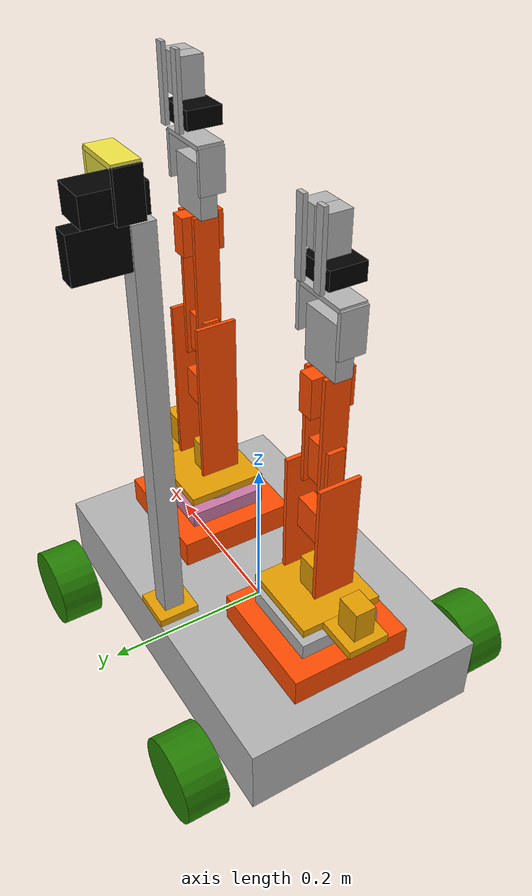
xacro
<?xml version="1.0"?>
<robot name="andrzej" xmlns:xacro="http://www.ros.org/wiki/xacro">

  <!-- Dimensions -->
  <xacro:property name="base_width" value=".3" />
  <xacro:property name="base_length" value=".47" />
  <xacro:property name="base_height" value=".09" />
  <xacro:property name="wheel_diam" value=".1" />
  <xacro:property name="wheel_width" value=".05" />

  <!-- Masses-->
  <xacro:property name="base_mass" value="5" />
  <xacro:property name="wheel_mass" value="0.3" />
  <xacro:property name="arm_base_mass" value="0.2" />
  <xacro:property name="gripper_base_mass" value="0.03" />
  <xacro:property name="gripper_finger_mass" value="0.02" />
  <xacro:property name="head_pole_mass" value="0.3" />

  <xacro:include filename="$(find andrzej_description)/urdf/materials.xacro" />

  <xacro:macro name="default_inertial" params="mass">
    <inertial>
      <mass value="${mass}" />
      <inertia ixx="1.0" ixy="0.0" ixz="0.0" iyy="1.0" iyz="0.0" izz="1.0" />
    </inertial>
  </xacro:macro>

  <xacro:include filename="$(find andrzej_description)/urdf/andrzej.gazebo" />
  <xacro:include filename="$(find andrzej_description)/urdf/andrzej_base.xacro" />
  <xacro:include filename="$(find andrzej_description)/urdf/andrzej_arms.xacro" />
  <xacro:include filename="$(find andrzej_description)/urdf/andrzej_head.xacro" />

</robot>

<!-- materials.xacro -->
<robot>

  <material name="gray">
    <color rgba=".7 .7 .7 .9"/>
  </material>
  <material name="green">
    <color rgba="0.15 0.505 .015 1"/>
  </material>
  <material name="black">
    <color rgba="0 0 0 1"/>
  </material>
  <material name="white">
    <color rgba="1 1 1 1"/>
  </material>
  <material name="orange">
    <color rgba="1 .3 0 .9"/>
  </material>

</robot>

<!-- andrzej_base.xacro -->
<robot name="andrzej" xmlns:xacro="http://www.ros.org/wiki/xacro">

  <link name="base_footprint">
   <visual>
      <origin xyz="0 0 0" rpy="0 0 0" />
      <geometry>
        <box size="0.001 0.001 0.001" />
      </geometry>
    </visual>
  </link>

  <joint name="base_link_joint" type="fixed">
    <origin xyz="0.0 0 0" rpy="0 0 0" />
    <parent link="base_footprint"/>
    <child link="base_link" />
  </joint>

  <link name="base_link">
    <visual>
      <geometry>
        <box size="${base_length} ${base_width} ${base_height}"/>
      </geometry>
      <material name="gray"/>
    </visual>
    <collision>
      <geometry>
        <box size="${base_length} ${base_width} ${base_height}"/>
      </geometry>
    </collision>
    <xacro:default_inertial mass="${base_mass}"/>
  </link>

  <xacro:macro name="wheel" params="prefix reflect_x reflect_y">

    <link name="${prefix}_wheel">
      <visual>
        <origin xyz="0 0 0" rpy="${pi/2} 0 0" />
        <geometry>
          <cylinder radius="${wheel_diam/2}" length="${wheel_width}"/>
        </geometry>
        <material name="green"/>
      </visual>
      <collision>
        <origin xyz="0 0 0" rpy="${pi/2} 0 0" />
        <geometry>
          <cylinder radius="${wheel_diam/2}" length="0.1"/>
        </geometry>
      </collision>
      <xacro:default_inertial mass="${wheel_mass}"/>
    </link>

    <joint name="${prefix}_wheel_joint" type="continuous">
      <axis xyz="0 1 0" rpy="0 0 0" />
      <parent link="base_link"/>
      <child link="${prefix}_wheel"/>
      <origin xyz="${0.17*reflect_x}
                   ${(base_width/2 + wheel_width/2 + .02)*reflect_y}
                   ${-base_height/2 + 0.02}" rpy="0 0 0"/>
    </joint>

  </xacro:macro>

  <xacro:wheel prefix="front_left" reflect_x="1" reflect_y="1" />
  <xacro:wheel prefix="front_right" reflect_x="1" reflect_y="-1" />
  <xacro:wheel prefix="rear_left" reflect_x="-1" reflect_y="1" />
  <xacro:wheel prefix="rear_right" reflect_x="-1" reflect_y="-1" />

</robot>

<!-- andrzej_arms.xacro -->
<robot name="andrzej" xmlns:xacro="http://www.ros.org/wiki/xacro">

  <xacro:include filename="$(find andrzej_description)/urdf/andrzej_arms_spec.xacro" />
  <xacro:include filename="$(find andrzej_description)/urdf/andrzej_gripper.xacro" />

  <xacro:macro name="arm_base" params="arm reflect">
    <link name="arm_${arm}_link_0">
      <visual>
        <geometry>
          <box size=".15 .15 .035"/>
        </geometry>
        <origin xyz="0 0 ${(.035)/2}"/>
        <material name="orange"/>
      </visual>

      <visual>
        <geometry>
          <box size=".1 .1 .02"/>
        </geometry>
        <origin xyz="0 0 0.045"/>
      </visual>

      <collision>
        <geometry>
          <box size=".15 .15 .035"/>
        </geometry>
      </collision>
      <xacro:default_inertial mass="${arm_base_mass}"/>
    </link>

    <joint name="platform_to_arm_${arm}" type="fixed">
      <parent link="base_link"/>
      <child link="arm_${arm}_link_0"/>
      <origin xyz="${0.125*reflect} 0 ${base_height/2}"/>
    </joint>
  </xacro:macro>

  <xacro:macro name="servo" params="arm link_name">
    <transmission name="arm_${arm}_tran_${link_name}">
      <type>transmission_interface/SimpleTransmission</type>
      <joint name="arm_${arm}_joint_${link_name}">
        <hardwareInterface>PositionJointInterface</hardwareInterface>
      </joint>
      <actuator name="arm_${arm}_servo_${link_name}">
        <hardwareInterface>PositionJointInterface</hardwareInterface>
        <mechanicalReduction>1</mechanicalReduction>
      </actuator>
    </transmission>
  </xacro:macro>

  <xacro:macro name="arm_link" params="arm link_name">
    <link name="arm_${arm}_link_${link_name}">
      <xacro:call macro="arm_${arm}_link_${link_name}_visual"/>
      <xacro:call macro="arm_${arm}_link_${link_name}_inertia"/>
    </link>

    <joint name="arm_${arm}_joint_${link_name}" type="revolute">
      <xacro:call macro="arm_${arm}_joint_${link_name}_spec"/>
      <parent link="arm_${arm}_link_${link_name-1}"/>
      <child link="arm_${arm}_link_${link_name}"/>
    </joint>

    <xacro:call macro="servo" arm="${arm}" link_name="${link_name}" />
  </xacro:macro>

  <xacro:macro name="arm" params="arm_id">
    <xacro:arm_link arm="${arm_id}" link_name="1"/>
    <xacro:arm_link arm="${arm_id}" link_name="2"/>
    <xacro:arm_link arm="${arm_id}" link_name="3"/>
    <xacro:arm_link arm="${arm_id}" link_name="4"/>
    <xacro:arm_link arm="${arm_id}" link_name="5"/>
    <xacro:gripper arm="${arm_id}"/>
  </xacro:macro>

  <xacro:call macro="arm_base" arm="1" reflect="1" />
  <xacro:call macro="arm_base" arm="2" reflect="-1" />
  <xacro:call macro="arm" arm_id="1"/>
  <xacro:call macro="arm" arm_id="2"/>

</robot>

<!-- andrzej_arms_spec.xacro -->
<robot name="andrzej" xmlns:xacro="http://www.ros.org/wiki/xacro">

  <xacro:property name="arm_base_length" value=".15" />
  <xacro:property name="arm_base_width" value=".15" />
  <xacro:property name="arm_base_height" value=".055" />

  <xacro:macro name="arm_1_link_1_visual">
    <visual>
      <geometry>
          <cylinder radius="0.0375" length="0.02"/>
      </geometry>
      <origin xyz="0 0 -0.01"/>
      <material name="gray"/>
    </visual>
    <visual>
      <geometry>
          <box size=".1 .1 .01"/>
      </geometry>
      <origin xyz="0 0 0.005"/>
    </visual>
    <visual>
      <geometry>
          <box size=".05 .05 .01"/>
      </geometry>
      <origin xyz="0.075 0 0.005"/>
    </visual>
    <visual>
      <geometry>
          <box size=".03 .025 .04"/>
      </geometry>
      <origin xyz="0.075 0 0.03"/>
    </visual>
    <visual>
      <geometry>
          <box size=".03 .025 .04"/>
      </geometry>
      <origin xyz="0 0 0.03"/>
    </visual>
  </xacro:macro>

  <xacro:macro name="arm_1_joint_1_spec">
    <axis xyz="0 0 1"/>
    <limit effort="1000.0" lower="-.67" upper="2.67" velocity="0.5"/>
    <origin xyz="0 0 .07"/>
  </xacro:macro>

  <xacro:macro name="arm_1_link_2_visual">
    <visual>
      <geometry>
        <box size=".005 .05 ${.2+.01}"/>
      </geometry>
      <origin xyz="-0.03 0 .1"/>
      <material name="orange"/>
    </visual>
    <visual>
      <geometry>
        <box size=".005 .05 ${.2+.01}"/>
      </geometry>
      <origin xyz="0.03 0 .1"/>
      <material name="orange"/>
    </visual>
    <visual>
      <geometry>
        <box size=".06 .02 .04"/>
      </geometry>
      <origin xyz="0 0 .1"/>
      <material name="orange"/>
    </visual>
  </xacro:macro>

  <xacro:macro name="arm_1_joint_2_spec">
    <axis xyz="1 0 0"/>
    <limit effort="1000.0" lower="-1.47" upper="1.87" velocity="0.5"/>
    <origin xyz="0 0 0.03"/>
  </xacro:macro>

  <xacro:macro name="arm_1_link_3_visual">
    <visual>
      <geometry>
        <box size=".005 .03 .18"/>
      </geometry>
      <origin xyz="-.015 0 .05"/>
      <material name="orange"/>
    </visual>
    <visual>
      <geometry>
        <box size=".005 .03 .18"/>
      </geometry>
      <origin xyz=".015 0 .05"/>
      <material name="orange"/>
    </visual>
    <visual>
      <geometry>
        <box size=".045 .02 .05"/>
      </geometry>
      <origin xyz="0 0 -0.01"/>
      <material name="orange"/>
    </visual>
    <visual>
      <geometry>
        <box size=".02 .05 .045"/>
      </geometry>
      <origin xyz="0 0 ${.14-.045/2}"/>
      <material name="orange"/>
    </visual>
  </xacro:macro>

  <xacro:macro name="arm_1_joint_3_spec">
    <axis xyz="1 0 0"/>
    <limit effort="1000.0" lower="-.87" upper="2.47" velocity="0.5"/>
    <origin xyz="0 0 .19"/>
  </xacro:macro>

  <xacro:macro name="arm_1_link_4_visual">
    <visual>
      <geometry>
        <box size=".05 .02 .06"/>
      </geometry>
      <origin xyz="0 0 .03"/>
      <material name="gray"/>
    </visual>
  </xacro:macro>

  <xacro:macro name="arm_1_joint_4_spec">
    <axis xyz="0 0 1"/>
    <limit effort="1000.0" lower="-1.67" upper="1.67" velocity="0.5"/>
    <origin xyz="0 0 .14"/>
  </xacro:macro>

  <xacro:macro name="arm_1_link_5_visual">
    <visual>
      <geometry>
        <box size=".005 .03 .05"/>
      </geometry>
      <origin xyz="-.0325 0 .005"/>
      <material name="gray"/>
    </visual>
    <visual>
      <geometry>
        <box size=".005 .03 .05"/>
      </geometry>
      <origin xyz=".0325 0 .005"/>
      <material name="gray"/>
    </visual>
    <visual>
      <geometry>
        <box size=".065 .03 .005"/>
      </geometry>
      <origin xyz="0 0 .03"/>
      <material name="gray"/>
    </visual>
  </xacro:macro>

  <xacro:macro name="arm_1_joint_5_spec">
    <axis xyz="1 0 0"/>
    <limit effort="1000.0" lower="-1.67" upper="1.67" velocity="0.5"/>
    <origin xyz="0 0 .05"/>
  </xacro:macro>

  <xacro:macro name="arm_2_link_1_visual">
    <visual>
      <geometry>
          <cylinder radius="0.0375" length="0.02"/>
      </geometry>
      <origin xyz="0 0 -0.01"/>
      <material name="gray"/>
    </visual>
    <visual>
      <geometry>
          <box size=".1 .1 .01"/>
      </geometry>
      <origin xyz="0 0 0.005"/>
    </visual>
    <visual>
      <geometry>
          <box size=".05 .05 .01"/>
      </geometry>
      <origin xyz="-0.075 0 0.005"/>
    </visual>
    <visual>
      <geometry>
          <box size=".03 .025 .04"/>
      </geometry>
      <origin xyz="-0.075 0 0.03"/>
    </visual>
    <visual>
      <geometry>
          <box size=".03 .025 .04"/>
      </geometry>
      <origin xyz="0 0 0.03"/>
    </visual>
  </xacro:macro>

  <xacro:macro name="arm_2_joint_1_spec">
    <axis xyz="0 0 1"/>
    <limit effort="1000.0" lower="-.67" upper="2.67" velocity="0.5"/>
    <origin xyz="0 0 .07"/>
  </xacro:macro>

  <xacro:macro name="arm_2_link_2_visual">
    <visual>
      <geometry>
        <box size=".005 .05 ${.14+.01}"/>
      </geometry>
      <origin xyz="-0.03 0 .075"/>
      <material name="orange"/>
    </visual>
    <visual>
      <geometry>
        <box size=".005 .05 ${.14+.01}"/>
      </geometry>
      <origin xyz="0.03 0 .075"/>
      <material name="orange"/>
    </visual>
    <visual>
      <geometry>
        <box size=".06 .02 .04"/>
      </geometry>
      <origin xyz="0 0 .075"/>
      <material name="orange"/>
    </visual>
  </xacro:macro>

  <xacro:macro name="arm_2_joint_2_spec">
    <axis xyz="1 0 0"/>
    <limit effort="1000.0" lower="-1.47" upper="1.87" velocity="0.5"/>
    <origin xyz="0 0 0.03"/>
  </xacro:macro>

  <xacro:macro name="arm_2_link_3_visual">
    <visual>
      <geometry>
        <box size=".005 .03 .14"/>
      </geometry>
      <origin xyz="-.015 0 .06"/>
      <material name="orange"/>
    </visual>
    <visual>
      <geometry>
        <box size=".005 .03 .14"/>
      </geometry>
      <origin xyz=".015 0 .06"/>
      <material name="orange"/>
    </visual>
    <visual>
      <geometry>
        <box size=".045 .02 .05"/>
      </geometry>
      <origin xyz="0 0 0.02"/>
      <material name="orange"/>
    </visual>
    <visual>
      <geometry>
        <box size=".02 .05 .045"/>
      </geometry>
      <origin xyz="0 0 ${.13-.045/2}"/>
      <material name="orange"/>
    </visual>
  </xacro:macro>

  <xacro:macro name="arm_2_joint_3_spec">
    <axis xyz="1 0 0"/>
    <limit effort="1000.0" lower="-.87" upper="2.47" velocity="0.5"/>
    <origin xyz="0 0 .14"/>
  </xacro:macro>

  <xacro:macro name="arm_2_link_4_visual">
    <visual>
      <geometry>
        <box size=".05 .02 .06"/>
      </geometry>
      <origin xyz="0 0 .03"/>
      <material name="gray"/>
    </visual>
  </xacro:macro>

  <xacro:macro name="arm_2_joint_4_spec">
    <axis xyz="0 0 1"/>
    <limit effort="1000.0" lower="-1.67" upper="1.67" velocity="0.5"/>
    <origin xyz="0 0 .13"/>
  </xacro:macro>

  <xacro:macro name="arm_2_link_5_visual">
    <visual>
      <geometry>
        <box size=".005 .03 .05"/>
      </geometry>
      <origin xyz="-.0325 0 .005"/>
      <material name="gray"/>
    </visual>
    <visual>
      <geometry>
        <box size=".005 .03 .05"/>
      </geometry>
      <origin xyz=".0325 0 .005"/>
      <material name="gray"/>
    </visual>
    <visual>
      <geometry>
        <box size=".065 .03 .005"/>
      </geometry>
      <origin xyz="0 0 .03"/>
      <material name="gray"/>
    </visual>
  </xacro:macro>

  <xacro:macro name="arm_2_joint_5_spec">
    <axis xyz="1 0 0"/>
    <limit effort="1000.0" lower="-1.67" upper="1.67" velocity="0.5"/>
    <origin xyz="0 0 .05"/>
  </xacro:macro>

  <xacro:macro name="arm_1_link_1_inertia">
    <inertial>
      <mass value="0.1" />
      <inertia ixx="1.0" ixy="0.0" ixz="0.0" iyy="1.0" iyz="0.0" izz="1.0" />
    </inertial>
  </xacro:macro>

  <xacro:macro name="arm_1_link_2_inertia">
    <inertial>
      <mass value="0.1" />
      <inertia ixx="1.0" ixy="0.0" ixz="0.0" iyy="1.0" iyz="0.0" izz="1.0" />
    </inertial>
  </xacro:macro>

  <xacro:macro name="arm_1_link_3_inertia">
    <inertial>
      <mass value="0.1" />
      <inertia ixx="1.0" ixy="0.0" ixz="0.0" iyy="1.0" iyz="0.0" izz="1.0" />
    </inertial>
  </xacro:macro>

  <xacro:macro name="arm_1_link_4_inertia">
    <inertial>
      <mass value="0.1" />
      <inertia ixx="1.0" ixy="0.0" ixz="0.0" iyy="1.0" iyz="0.0" izz="1.0" />
    </inertial>
  </xacro:macro>

  <xacro:macro name="arm_1_link_5_inertia">
    <inertial>
      <mass value="0.1" />
      <inertia ixx="1.0" ixy="0.0" ixz="0.0" iyy="1.0" iyz="0.0" izz="1.0" />
    </inertial>
  </xacro:macro>

  <xacro:macro name="arm_2_link_1_inertia">
    <inertial>
      <mass value="0.1" />
      <inertia ixx="1.0" ixy="0.0" ixz="0.0" iyy="1.0" iyz="0.0" izz="1.0" />
    </inertial>
  </xacro:macro>

  <xacro:macro name="arm_2_link_2_inertia">
    <inertial>
      <mass value="0.1" />
      <inertia ixx="1.0" ixy="0.0" ixz="0.0" iyy="1.0" iyz="0.0" izz="1.0" />
    </inertial>
  </xacro:macro>

  <xacro:macro name="arm_2_link_3_inertia">
    <inertial>
      <mass value="0.1" />
      <inertia ixx="1.0" ixy="0.0" ixz="0.0" iyy="1.0" iyz="0.0" izz="1.0" />
    </inertial>
  </xacro:macro>

  <xacro:macro name="arm_2_link_4_inertia">
    <inertial>
      <mass value="0.1" />
      <inertia ixx="1.0" ixy="0.0" ixz="0.0" iyy="1.0" iyz="0.0" izz="1.0" />
    </inertial>
  </xacro:macro>

  <xacro:macro name="arm_2_link_5_inertia">
    <inertial>
      <mass value="0.1" />
      <inertia ixx="1.0" ixy="0.0" ixz="0.0" iyy="1.0" iyz="0.0" izz="1.0" />
    </inertial>
  </xacro:macro>

</robot>

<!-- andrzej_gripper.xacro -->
<robot name="andrzej" xmlns:xacro="http://www.ros.org/wiki/xacro">

<xacro:macro name="finger" params="arm suffix reflect" >

  <link name="arm_${arm}_finger_${suffix}_link">
    <visual>
      <geometry>
        <box size=".01 .005 .08"/>
      </geometry>
      <origin xyz="0 ${reflect*0.025} .0325"/>
      <material name="gray"/>
    </visual>

    <visual>
      <geometry>
        <box size=".02 .025 .04"/>
      </geometry>
      <origin xyz="-0.005 ${reflect*0.01} .045"/>
      <material name="gray"/>
    </visual>

    <xacro:default_inertial mass="${gripper_finger_mass}"/>
  </link>

  <joint name="arm_${arm}_finger_${suffix}_joint" type="revolute">
    <axis xyz="0 1 0"/>
    <limit effort="1000.0" lower="0.0" upper="0.548" velocity="0.5"/>
    <origin rpy="0 0 ${reflect*pi/2-pi/2}" xyz="${reflect*0.015} 0 0"/>
    <parent link="arm_${arm}_gripper_base"/>
    <child link="arm_${arm}_finger_${suffix}_link"/>
  </joint>

  <transmission name="arm_${arm}_finger_${suffix}_trans">
    <type>transmission_interface/SimpleTransmission</type>
    <joint name="arm_${arm}_finger_${suffix}_joint">
      <hardwareInterface>PositionJointInterface</hardwareInterface>
    </joint>
    <actuator name="arm_${arm}_gripper_servo">
      <hardwareInterface>PositionJointInterface</hardwareInterface>
      <mechanicalReduction>1</mechanicalReduction>
    </actuator>
  </transmission>

</xacro:macro>

<xacro:macro name="gripper" params="arm" >

  <link name="arm_${arm}_gripper_base">
    <visual>
      <geometry>
        <box size=".045 .04 .02"/>
      </geometry>
      <origin xyz="0 0 .005"/>
      <material name="black"/>
    </visual>

    <xacro:default_inertial mass="${gripper_base_mass}"/>
  </link>

  <joint name="arm_${arm}_gripper_base_joint" type="fixed">
    <parent link="arm_${arm}_link_5"/>
    <child link="arm_${arm}_gripper_base"/>
    <origin rpy="0 0 0" xyz="0 0 0.05"/>
  </joint>

  <xacro:call macro="finger" arm="${arm}" suffix="left" reflect="1"/>
  <xacro:call macro="finger" arm="${arm}" suffix="right" reflect="-1"/>

</xacro:macro>

</robot>

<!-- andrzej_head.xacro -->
<robot name="andrzej" xmlns:xacro="http://www.ros.org/wiki/xacro">

<xacro:property name="head_pole_width" value=".025" />
<xacro:property name="head_pole_height" value=".5" />

<link name="head_pole">
  <visual>
    <geometry>
      <box size="${head_pole_width} ${head_pole_width} ${head_pole_height}"/>
    </geometry>
    <origin xyz="0 0 ${head_pole_height/2}"/>
    <material name="gray"/>
  </visual>

  <visual>
    <geometry>
      <box size="${2*head_pole_width} ${2*head_pole_width} 0.01"/>
    </geometry>
    <origin xyz="0 0 0.005"/>
  </visual>

  <xacro:default_inertial mass="${head_pole_mass}"/>
</link>

<joint name="head_pole_joint" type="fixed">
  <parent link="base_link"/>
  <child link="head_pole"/>
  <origin xyz="0 ${base_width/2 - head_pole_width} ${base_height/2}"/>
</joint>

<link name="head_base_link">
  <visual>
    <geometry>
      <box size=".02 .06 .05"/>
    </geometry>
    <origin xyz="0 0 -.02"/>
    <material name="black"/>
  </visual>

  <xacro:default_inertial mass=".1"/>
</link>

<joint name="head_base_joint" type="fixed">
  <parent link="head_pole"/>
  <child link="head_base_link"/>
  <origin xyz="0 ${head_pole_width/2 + .03} ${head_pole_height}"/>
</joint>

<link name="head_pan_link">
  <visual>
    <geometry>
      <box size=".04 .065 .03"/>
    </geometry>
    <origin xyz="-.01 0 .015"/>
    <material name="black"/>
  </visual>

  <xacro:default_inertial mass=".1"/>
</link>

<joint name="head_pan_joint" type="revolute">
  <axis xyz="0 0 1"/>
  <limit effort="1000.0" lower="-.67" upper="2.67" velocity="0.5"/>
  <origin xyz="0 -.01 .015"/>
  <parent link="head_base_link"/>
  <child link="head_pan_link"/>
</joint>

<link name="head_tilt_link">
  <visual>
    <geometry>
      <box size=".005 .0275 .05"/>
    </geometry>
    <origin xyz="-.0375 0 .01"/>
    <material name="black"/>
  </visual>
  <visual>
    <geometry>
      <box size=".005 .0275 .05"/>
    </geometry>
    <origin xyz=".0175 0 .01"/>
  </visual>
  <visual>
    <geometry>
      <box size=".055 .0275 .005"/>
    </geometry>
    <origin xyz="-.01 0 .035"/>
  </visual>

  <xacro:default_inertial mass=".1"/>
</link>

<joint name="head_tilt_joint" type="revolute">
  <axis xyz="1 0 0"/>
  <limit effort="1000.0" lower="-.67" upper="2.67" velocity="0.5"/>
  <origin xyz="0 -.01 .015"/>
  <parent link="head_pan_link"/>
  <child link="head_tilt_link"/>
</joint>

</robot>
